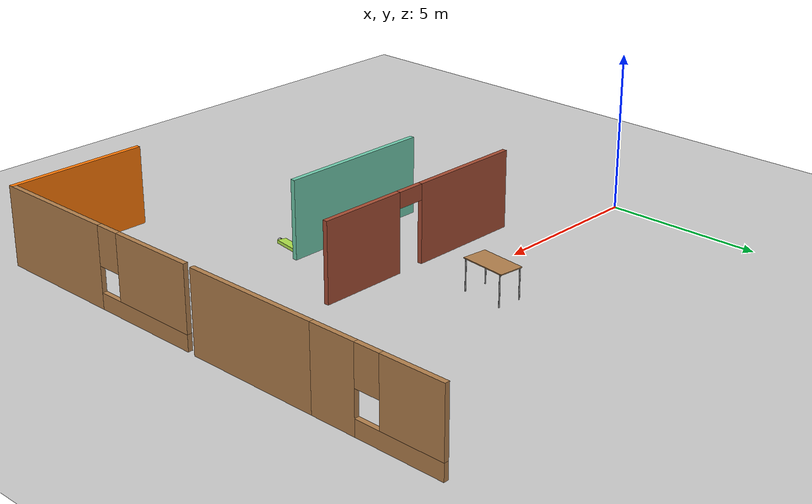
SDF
<sdf version="1.7">
 <world name="default">
  <model name="ground_plane">
   <static>1</static>
   <link name="link">
    <collision name="collision">
     <geometry><plane><normal>0 0 1</normal><size>100 100</size></plane></geometry>
     <surface>
      <contact><collide_bitmask>65535</collide_bitmask></contact>
      <friction><ode><mu>100</mu><mu2>50</mu2></ode></friction>
     </surface>
    </collision>
    <visual name="visual">
     <cast_shadows>0</cast_shadows>
     <geometry><plane><normal>0 0 1</normal><size>100 100</size></plane></geometry>
     <material>
      <script><uri>file://media/materials/scripts/gazebo.material</uri><name>Gazebo/Grey</name></script>
     </material>
    </visual>
   </link>
  </model>
  <model name="table_clone_clone">
   <model name="table">
    <static>1</static>
    <link name="link">
     <collision name="surface">
      <pose>0 0 1 0 -0 0</pose>
      <geometry><box><size>1.5 0.8 0.03</size></box></geometry>
      <surface><friction><ode><mu>0.6</mu><mu2>0.6</mu2></ode></friction></surface>
     </collision>
     <visual name="visual1">
      <pose>0 0 1 0 -0 0</pose>
      <geometry><box><size>1.5 0.8 0.03</size></box></geometry>
      <material>
       <script><uri>file://media/materials/scripts/gazebo.material</uri><name>Gazebo/Wood</name></script>
      </material>
     </visual>
     <collision name="front_left_leg">
      <pose>0.68 0.38 0.5 0 -0 0</pose>
      <geometry><cylinder><radius>0.02</radius><length>1</length></cylinder></geometry>
     </collision>
     <visual name="front_left_leg">
      <pose>0.68 0.38 0.5 0 -0 0</pose>
      <geometry><cylinder><radius>0.02</radius><length>1</length></cylinder></geometry>
      <material>
       <script><uri>file://media/materials/scripts/gazebo.material</uri><name>Gazebo/Grey</name></script>
      </material>
     </visual>
     <collision name="front_right_leg">
      <pose>0.68 -0.38 0.5 0 -0 0</pose>
      <geometry><cylinder><radius>0.02</radius><length>1</length></cylinder></geometry>
     </collision>
     <visual name="front_right_leg">
      <pose>0.68 -0.38 0.5 0 -0 0</pose>
      <geometry><cylinder><radius>0.02</radius><length>1</length></cylinder></geometry>
      <material>
       <script><uri>file://media/materials/scripts/gazebo.material</uri><name>Gazebo/Grey</name></script>
      </material>
     </visual>
     <collision name="back_right_leg">
      <pose>-0.68 -0.38 0.5 0 -0 0</pose>
      <geometry><cylinder><radius>0.02</radius><length>1</length></cylinder></geometry>
     </collision>
     <visual name="back_right_leg">
      <pose>-0.68 -0.38 0.5 0 -0 0</pose>
      <geometry><cylinder><radius>0.02</radius><length>1</length></cylinder></geometry>
      <material>
       <script><uri>file://media/materials/scripts/gazebo.material</uri><name>Gazebo/Grey</name></script>
      </material>
     </visual>
     <collision name="back_left_leg">
      <pose>-0.68 0.38 0.5 0 -0 0</pose>
      <geometry><cylinder><radius>0.02</radius><length>1</length></cylinder></geometry>
     </collision>
     <visual name="back_left_leg">
      <pose>-0.68 0.38 0.5 0 -0 0</pose>
      <geometry><cylinder><radius>0.02</radius><length>1</length></cylinder></geometry>
      <material>
       <script><uri>file://media/materials/scripts/gazebo.material</uri><name>Gazebo/Grey</name></script>
      </material>
     </visual>
    </link>
   </model>
   <static>0</static>
   <pose>7.53193 1.28893 0 0 -0 1.46059</pose>
  </model>
  <model name="floorplan">
   <link name="Wall_10">
    <pose>15.7094 -4.42431 0 0 -0 1.5708</pose>
    <visual name="Wall_10_Visual_0">
     <pose>-1.80178 0 1.25 0 -0 0</pose>
     <geometry><box><size>4.14643 0.15 2.5</size></box></geometry>
     <material>
      <script><uri>file://media/materials/scripts/gazebo.material</uri><name>Gazebo/Wood</name></script>
      <ambient>0.996078 0.47451 0.0196078 1</ambient>
      <shader type="pixel"/>
     </material>
     <meta><layer>0</layer></meta>
    </visual>
    <visual name="Wall_10_Visual_1">
     <pose>2.07322 0 0.25 0 -0 0</pose>
     <geometry><box><size>3.60357 0.15 0.5</size></box></geometry>
     <material>
      <script><uri>file://media/materials/scripts/gazebo.material</uri><name>Gazebo/Wood</name></script>
      <ambient>0.996078 0.47451 0.0196078 1</ambient>
      <shader type="pixel"/>
     </material>
     <meta><layer>0</layer></meta>
    </visual>
    <visual name="Wall_10_Visual_2">
     <pose>2.47322 0 1.5 0 -0 0</pose>
     <geometry><box><size>2.80357 0.15 2</size></box></geometry>
     <material>
      <script><uri>file://media/materials/scripts/gazebo.material</uri><name>Gazebo/Wood</name></script>
      <ambient>0.996078 0.47451 0.0196078 1</ambient>
      <shader type="pixel"/>
     </material>
     <meta><layer>0</layer></meta>
    </visual>
    <visual name="Wall_10_Visual_3">
     <pose>0.671434 0 1.9 0 -0 0</pose>
     <geometry><box><size>0.8 0.15 1.2</size></box></geometry>
     <material>
      <script><uri>file://media/materials/scripts/gazebo.material</uri><name>Gazebo/Wood</name></script>
      <ambient>0.996078 0.47451 0.0196078 1</ambient>
      <shader type="pixel"/>
     </material>
     <meta><layer>0</layer></meta>
    </visual>
    <collision name="Wall_10_Collision_0">
     <pose>-1.80178 0 1.25 0 -0 0</pose>
     <geometry><box><size>4.14643 0.15 2.5</size></box></geometry>
     <surface>
      <friction>
       <ode><mu>1</mu><mu2>1</mu2><fdir1>0 0 0</fdir1><slip1>0</slip1><slip2>0</slip2></ode>
       <torsional>
        <coefficient>1</coefficient>
        <patch_radius>0</patch_radius>
        <surface_radius>0</surface_radius>
        <use_patch_radius>1</use_patch_radius>
        <ode><slip>0</slip></ode>
       </torsional>
      </friction>
      <bounce><restitution_coefficient>0</restitution_coefficient><threshold>1e+06</threshold></bounce>
      <contact>
       <collide_without_contact>0</collide_without_contact>
       <collide_without_contact_bitmask>1</collide_without_contact_bitmask>
       <collide_bitmask>1</collide_bitmask>
       <ode>
        <soft_cfm>0</soft_cfm>
        <soft_erp>0.2</soft_erp>
        <kp>1e+13</kp>
        <kd>1</kd>
        <max_vel>0.01</max_vel>
        <min_depth>0</min_depth>
       </ode>
       <bullet>
        <split_impulse>1</split_impulse>
        <split_impulse_penetration_threshold>-0.01</split_impulse_penetration_threshold>
        <soft_cfm>0</soft_cfm>
        <soft_erp>0.2</soft_erp>
        <kp>1e+13</kp>
        <kd>1</kd>
       </bullet>
      </contact>
     </surface>
    </collision>
    <collision name="Wall_10_Collision_1">
     <pose>2.07322 0 0.25 0 -0 0</pose>
     <geometry><box><size>3.60357 0.15 0.5</size></box></geometry>
     <surface>
      <friction>
       <ode><mu>1</mu><mu2>1</mu2><fdir1>0 0 0</fdir1><slip1>0</slip1><slip2>0</slip2></ode>
       <torsional>
        <coefficient>1</coefficient>
        <patch_radius>0</patch_radius>
        <surface_radius>0</surface_radius>
        <use_patch_radius>1</use_patch_radius>
        <ode><slip>0</slip></ode>
       </torsional>
      </friction>
      <bounce><restitution_coefficient>0</restitution_coefficient><threshold>1e+06</threshold></bounce>
      <contact>
       <collide_without_contact>0</collide_without_contact>
       <collide_without_contact_bitmask>1</collide_without_contact_bitmask>
       <collide_bitmask>1</collide_bitmask>
       <ode>
        <soft_cfm>0</soft_cfm>
        <soft_erp>0.2</soft_erp>
        <kp>1e+13</kp>
        <kd>1</kd>
        <max_vel>0.01</max_vel>
        <min_depth>0</min_depth>
       </ode>
       <bullet>
        <split_impulse>1</split_impulse>
        <split_impulse_penetration_threshold>-0.01</split_impulse_penetration_threshold>
        <soft_cfm>0</soft_cfm>
        <soft_erp>0.2</soft_erp>
        <kp>1e+13</kp>
        <kd>1</kd>
       </bullet>
      </contact>
     </surface>
    </collision>
    <collision name="Wall_10_Collision_2">
     <pose>2.47322 0 1.5 0 -0 0</pose>
     <geometry><box><size>2.80357 0.15 2</size></box></geometry>
     <surface>
      <friction>
       <ode><mu>1</mu><mu2>1</mu2><fdir1>0 0 0</fdir1><slip1>0</slip1><slip2>0</slip2></ode>
       <torsional>
        <coefficient>1</coefficient>
        <patch_radius>0</patch_radius>
        <surface_radius>0</surface_radius>
        <use_patch_radius>1</use_patch_radius>
        <ode><slip>0</slip></ode>
       </torsional>
      </friction>
      <bounce><restitution_coefficient>0</restitution_coefficient><threshold>1e+06</threshold></bounce>
      <contact>
       <collide_without_contact>0</collide_without_contact>
       <collide_without_contact_bitmask>1</collide_without_contact_bitmask>
       <collide_bitmask>1</collide_bitmask>
       <ode>
        <soft_cfm>0</soft_cfm>
        <soft_erp>0.2</soft_erp>
        <kp>1e+13</kp>
        <kd>1</kd>
        <max_vel>0.01</max_vel>
        <min_depth>0</min_depth>
       </ode>
       <bullet>
        <split_impulse>1</split_impulse>
        <split_impulse_penetration_threshold>-0.01</split_impulse_penetration_threshold>
        <soft_cfm>0</soft_cfm>
        <soft_erp>0.2</soft_erp>
        <kp>1e+13</kp>
        <kd>1</kd>
       </bullet>
      </contact>
     </surface>
    </collision>
    <collision name="Wall_10_Collision_3">
     <pose>0.671434 0 1.9 0 -0 0</pose>
     <geometry><box><size>0.8 0.15 1.2</size></box></geometry>
     <surface>
      <friction>
       <ode><mu>1</mu><mu2>1</mu2><fdir1>0 0 0</fdir1><slip1>0</slip1><slip2>0</slip2></ode>
       <torsional>
        <coefficient>1</coefficient>
        <patch_radius>0</patch_radius>
        <surface_radius>0</surface_radius>
        <use_patch_radius>1</use_patch_radius>
        <ode><slip>0</slip></ode>
       </torsional>
      </friction>
      <bounce><restitution_coefficient>0</restitution_coefficient><threshold>1e+06</threshold></bounce>
      <contact>
       <collide_without_contact>0</collide_without_contact>
       <collide_without_contact_bitmask>1</collide_without_contact_bitmask>
       <collide_bitmask>1</collide_bitmask>
       <ode>
        <soft_cfm>0</soft_cfm>
        <soft_erp>0.2</soft_erp>
        <kp>1e+13</kp>
        <kd>1</kd>
        <max_vel>0.01</max_vel>
        <min_depth>0</min_depth>
       </ode>
       <bullet>
        <split_impulse>1</split_impulse>
        <split_impulse_penetration_threshold>-0.01</split_impulse_penetration_threshold>
        <soft_cfm>0</soft_cfm>
        <soft_erp>0.2</soft_erp>
        <kp>1e+13</kp>
        <kd>1</kd>
       </bullet>
      </contact>
     </surface>
    </collision>
   </link>
   <link name="Wall_16">
    <pose>15.725 1.96893 0 0 -0 1.5708</pose>
    <visual name="Wall_16_Visual">
     <pose>0 0 1.25 0 -0 0</pose>
     <geometry><box><size>4.5 0.15 2.5</size></box></geometry>
     <material>
      <script><uri>file://media/materials/scripts/gazebo.material</uri><name>Gazebo/Wood</name></script>
      <ambient>0.996078 0.47451 0.0196078 1</ambient>
      <shader type="pixel"/>
     </material>
     <meta><layer>0</layer></meta>
    </visual>
    <collision name="Wall_16_Collision">
     <pose>0 0 1.25 0 -0 0</pose>
     <geometry><box><size>4.5 0.15 2.5</size></box></geometry>
     <surface>
      <friction>
       <ode><mu>1</mu><mu2>1</mu2><fdir1>0 0 0</fdir1><slip1>0</slip1><slip2>0</slip2></ode>
       <torsional>
        <coefficient>1</coefficient>
        <patch_radius>0</patch_radius>
        <surface_radius>0</surface_radius>
        <use_patch_radius>1</use_patch_radius>
        <ode><slip>0</slip></ode>
       </torsional>
      </friction>
      <bounce><restitution_coefficient>0</restitution_coefficient><threshold>1e+06</threshold></bounce>
      <contact>
       <collide_without_contact>0</collide_without_contact>
       <collide_without_contact_bitmask>1</collide_without_contact_bitmask>
       <collide_bitmask>1</collide_bitmask>
       <ode>
        <soft_cfm>0</soft_cfm>
        <soft_erp>0.2</soft_erp>
        <kp>1e+13</kp>
        <kd>1</kd>
        <max_vel>0.01</max_vel>
        <min_depth>0</min_depth>
       </ode>
       <bullet>
        <split_impulse>1</split_impulse>
        <split_impulse_penetration_threshold>-0.01</split_impulse_penetration_threshold>
        <soft_cfm>0</soft_cfm>
        <soft_erp>0.2</soft_erp>
        <kp>1e+13</kp>
        <kd>1</kd>
       </bullet>
      </contact>
     </surface>
    </collision>
   </link>
   <link name="Wall_20">
    <pose>15.725 6.19393 0 0 -0 1.5708</pose>
    <visual name="Wall_20_Visual_0">
     <pose>-1.39393 0 1.25 0 -0 0</pose>
     <geometry><box><size>1.46215 0.15 2.5</size></box></geometry>
     <material>
      <script><uri>file://media/materials/scripts/gazebo.material</uri><name>Gazebo/Wood</name></script>
      <ambient>1 1 1 1</ambient>
      <shader type="pixel"/>
     </material>
     <meta><layer>0</layer></meta>
    </visual>
    <visual name="Wall_20_Visual_1">
     <pose>0.731073 0 0.25 0 -0 0</pose>
     <geometry><box><size>2.78785 0.15 0.5</size></box></geometry>
     <material>
      <script><uri>file://media/materials/scripts/gazebo.material</uri><name>Gazebo/Wood</name></script>
      <ambient>1 1 1 1</ambient>
      <shader type="pixel"/>
     </material>
     <meta><layer>0</layer></meta>
    </visual>
    <visual name="Wall_20_Visual_2">
     <pose>1.13107 0 1.5 0 -0 0</pose>
     <geometry><box><size>1.98785 0.15 2</size></box></geometry>
     <material>
      <script><uri>file://media/materials/scripts/gazebo.material</uri><name>Gazebo/Wood</name></script>
      <ambient>1 1 1 1</ambient>
      <shader type="pixel"/>
     </material>
     <meta><layer>0</layer></meta>
    </visual>
    <visual name="Wall_20_Visual_3">
     <pose>-0.262854 0 1.9 0 -0 0</pose>
     <geometry><box><size>0.8 0.15 1.2</size></box></geometry>
     <material>
      <script><uri>file://media/materials/scripts/gazebo.material</uri><name>Gazebo/Wood</name></script>
      <ambient>1 1 1 1</ambient>
      <shader type="pixel"/>
     </material>
     <meta><layer>0</layer></meta>
    </visual>
    <collision name="Wall_20_Collision_0">
     <pose>-1.39393 0 1.25 0 -0 0</pose>
     <geometry><box><size>1.46215 0.15 2.5</size></box></geometry>
     <surface>
      <friction>
       <ode><mu>1</mu><mu2>1</mu2><fdir1>0 0 0</fdir1><slip1>0</slip1><slip2>0</slip2></ode>
       <torsional>
        <coefficient>1</coefficient>
        <patch_radius>0</patch_radius>
        <surface_radius>0</surface_radius>
        <use_patch_radius>1</use_patch_radius>
        <ode><slip>0</slip></ode>
       </torsional>
      </friction>
      <bounce><restitution_coefficient>0</restitution_coefficient><threshold>1e+06</threshold></bounce>
      <contact>
       <collide_without_contact>0</collide_without_contact>
       <collide_without_contact_bitmask>1</collide_without_contact_bitmask>
       <collide_bitmask>1</collide_bitmask>
       <ode>
        <soft_cfm>0</soft_cfm>
        <soft_erp>0.2</soft_erp>
        <kp>1e+13</kp>
        <kd>1</kd>
        <max_vel>0.01</max_vel>
        <min_depth>0</min_depth>
       </ode>
       <bullet>
        <split_impulse>1</split_impulse>
        <split_impulse_penetration_threshold>-0.01</split_impulse_penetration_threshold>
        <soft_cfm>0</soft_cfm>
        <soft_erp>0.2</soft_erp>
        <kp>1e+13</kp>
        <kd>1</kd>
       </bullet>
      </contact>
     </surface>
    </collision>
    <collision name="Wall_20_Collision_1">
     <pose>0.731073 0 0.25 0 -0 0</pose>
     <geometry><box><size>2.78785 0.15 0.5</size></box></geometry>
     <surface>
      <friction>
       <ode><mu>1</mu><mu2>1</mu2><fdir1>0 0 0</fdir1><slip1>0</slip1><slip2>0</slip2></ode>
       <torsional>
        <coefficient>1</coefficient>
        <patch_radius>0</patch_radius>
        <surface_radius>0</surface_radius>
        <use_patch_radius>1</use_patch_radius>
        <ode><slip>0</slip></ode>
       </torsional>
      </friction>
      <bounce><restitution_coefficient>0</restitution_coefficient><threshold>1e+06</threshold></bounce>
      <contact>
       <collide_without_contact>0</collide_without_contact>
       <collide_without_contact_bitmask>1</collide_without_contact_bitmask>
       <collide_bitmask>1</collide_bitmask>
       <ode>
        <soft_cfm>0</soft_cfm>
        <soft_erp>0.2</soft_erp>
        <kp>1e+13</kp>
        <kd>1</kd>
        <max_vel>0.01</max_vel>
        <min_depth>0</min_depth>
       </ode>
       <bullet>
        <split_impulse>1</split_impulse>
        <split_impulse_penetration_threshold>-0.01</split_impulse_penetration_threshold>
        <soft_cfm>0</soft_cfm>
        <soft_erp>0.2</soft_erp>
        <kp>1e+13</kp>
        <kd>1</kd>
       </bullet>
      </contact>
     </surface>
    </collision>
    <collision name="Wall_20_Collision_2">
     <pose>1.13107 0 1.5 0 -0 0</pose>
     <geometry><box><size>1.98785 0.15 2</size></box></geometry>
     <surface>
      <friction>
       <ode><mu>1</mu><mu2>1</mu2><fdir1>0 0 0</fdir1><slip1>0</slip1><slip2>0</slip2></ode>
       <torsional>
        <coefficient>1</coefficient>
        <patch_radius>0</patch_radius>
        <surface_radius>0</surface_radius>
        <use_patch_radius>1</use_patch_radius>
        <ode><slip>0</slip></ode>
       </torsional>
      </friction>
      <bounce><restitution_coefficient>0</restitution_coefficient><threshold>1e+06</threshold></bounce>
      <contact>
       <collide_without_contact>0</collide_without_contact>
       <collide_without_contact_bitmask>1</collide_without_contact_bitmask>
       <collide_bitmask>1</collide_bitmask>
       <ode>
        <soft_cfm>0</soft_cfm>
        <soft_erp>0.2</soft_erp>
        <kp>1e+13</kp>
        <kd>1</kd>
        <max_vel>0.01</max_vel>
        <min_depth>0</min_depth>
       </ode>
       <bullet>
        <split_impulse>1</split_impulse>
        <split_impulse_penetration_threshold>-0.01</split_impulse_penetration_threshold>
        <soft_cfm>0</soft_cfm>
        <soft_erp>0.2</soft_erp>
        <kp>1e+13</kp>
        <kd>1</kd>
       </bullet>
      </contact>
     </surface>
    </collision>
    <collision name="Wall_20_Collision_3">
     <pose>-0.262854 0 1.9 0 -0 0</pose>
     <geometry><box><size>0.8 0.15 1.2</size></box></geometry>
     <surface>
      <friction>
       <ode><mu>1</mu><mu2>1</mu2><fdir1>0 0 0</fdir1><slip1>0</slip1><slip2>0</slip2></ode>
       <torsional>
        <coefficient>1</coefficient>
        <patch_radius>0</patch_radius>
        <surface_radius>0</surface_radius>
        <use_patch_radius>1</use_patch_radius>
        <ode><slip>0</slip></ode>
       </torsional>
      </friction>
      <bounce><restitution_coefficient>0</restitution_coefficient><threshold>1e+06</threshold></bounce>
      <contact>
       <collide_without_contact>0</collide_without_contact>
       <collide_without_contact_bitmask>1</collide_without_contact_bitmask>
       <collide_bitmask>1</collide_bitmask>
       <ode>
        <soft_cfm>0</soft_cfm>
        <soft_erp>0.2</soft_erp>
        <kp>1e+13</kp>
        <kd>1</kd>
        <max_vel>0.01</max_vel>
        <min_depth>0</min_depth>
       </ode>
       <bullet>
        <split_impulse>1</split_impulse>
        <split_impulse_penetration_threshold>-0.01</split_impulse_penetration_threshold>
        <soft_cfm>0</soft_cfm>
        <soft_erp>0.2</soft_erp>
        <kp>1e+13</kp>
        <kd>1</kd>
       </bullet>
      </contact>
     </surface>
    </collision>
   </link>
   <link name="Wall_30">
    <pose>7.65692 0.027575 0 0 -0 0</pose>
    <visual name="Wall_30_Visual_0">
     <pose>-1.87765 0 1.25 0 -0 0</pose>
     <geometry><box><size>3.74469 0.15 2.5</size></box></geometry>
     <material>
      <script><uri>file://media/materials/scripts/gazebo.material</uri><name>Gazebo/Bricks</name></script>
      <ambient>1 1 1 1</ambient>
      <shader type="pixel"/>
     </material>
     <meta><layer>0</layer></meta>
    </visual>
    <visual name="Wall_30_Visual_1">
     <pose>2.32235 0 1.25 0 -0 0</pose>
     <geometry><box><size>2.85531 0.15 2.5</size></box></geometry>
     <material>
      <script><uri>file://media/materials/scripts/gazebo.material</uri><name>Gazebo/Bricks</name></script>
      <ambient>1 1 1 1</ambient>
      <shader type="pixel"/>
     </material>
     <meta><layer>0</layer></meta>
    </visual>
    <visual name="Wall_30_Visual_2">
     <pose>0.444693 0 2.25 0 -0 0</pose>
     <geometry><box><size>0.9 0.15 0.5</size></box></geometry>
     <material>
      <script><uri>file://media/materials/scripts/gazebo.material</uri><name>Gazebo/Bricks</name></script>
      <ambient>1 1 1 1</ambient>
      <shader type="pixel"/>
     </material>
     <meta><layer>0</layer></meta>
    </visual>
    <collision name="Wall_30_Collision_0">
     <pose>-1.87765 0 1.25 0 -0 0</pose>
     <geometry><box><size>3.74469 0.15 2.5</size></box></geometry>
     <surface>
      <friction>
       <ode><mu>1</mu><mu2>1</mu2><fdir1>0 0 0</fdir1><slip1>0</slip1><slip2>0</slip2></ode>
       <torsional>
        <coefficient>1</coefficient>
        <patch_radius>0</patch_radius>
        <surface_radius>0</surface_radius>
        <use_patch_radius>1</use_patch_radius>
        <ode><slip>0</slip></ode>
       </torsional>
      </friction>
      <bounce><restitution_coefficient>0</restitution_coefficient><threshold>1e+06</threshold></bounce>
      <contact>
       <collide_without_contact>0</collide_without_contact>
       <collide_without_contact_bitmask>1</collide_without_contact_bitmask>
       <collide_bitmask>1</collide_bitmask>
       <ode>
        <soft_cfm>0</soft_cfm>
        <soft_erp>0.2</soft_erp>
        <kp>1e+13</kp>
        <kd>1</kd>
        <max_vel>0.01</max_vel>
        <min_depth>0</min_depth>
       </ode>
       <bullet>
        <split_impulse>1</split_impulse>
        <split_impulse_penetration_threshold>-0.01</split_impulse_penetration_threshold>
        <soft_cfm>0</soft_cfm>
        <soft_erp>0.2</soft_erp>
        <kp>1e+13</kp>
        <kd>1</kd>
       </bullet>
      </contact>
     </surface>
    </collision>
    <collision name="Wall_30_Collision_1">
     <pose>2.32235 0 1.25 0 -0 0</pose>
     <geometry><box><size>2.85531 0.15 2.5</size></box></geometry>
     <surface>
      <friction>
       <ode><mu>1</mu><mu2>1</mu2><fdir1>0 0 0</fdir1><slip1>0</slip1><slip2>0</slip2></ode>
       <torsional>
        <coefficient>1</coefficient>
        <patch_radius>0</patch_radius>
        <surface_radius>0</surface_radius>
        <use_patch_radius>1</use_patch_radius>
        <ode><slip>0</slip></ode>
       </torsional>
      </friction>
      <bounce><restitution_coefficient>0</restitution_coefficient><threshold>1e+06</threshold></bounce>
      <contact>
       <collide_without_contact>0</collide_without_contact>
       <collide_without_contact_bitmask>1</collide_without_contact_bitmask>
       <collide_bitmask>1</collide_bitmask>
       <ode>
        <soft_cfm>0</soft_cfm>
        <soft_erp>0.2</soft_erp>
        <kp>1e+13</kp>
        <kd>1</kd>
        <max_vel>0.01</max_vel>
        <min_depth>0</min_depth>
       </ode>
       <bullet>
        <split_impulse>1</split_impulse>
        <split_impulse_penetration_threshold>-0.01</split_impulse_penetration_threshold>
        <soft_cfm>0</soft_cfm>
        <soft_erp>0.2</soft_erp>
        <kp>1e+13</kp>
        <kd>1</kd>
       </bullet>
      </contact>
     </surface>
    </collision>
    <collision name="Wall_30_Collision_2">
     <pose>0.444693 0 2.25 0 -0 0</pose>
     <geometry><box><size>0.9 0.15 0.5</size></box></geometry>
     <surface>
      <friction>
       <ode><mu>1</mu><mu2>1</mu2><fdir1>0 0 0</fdir1><slip1>0</slip1><slip2>0</slip2></ode>
       <torsional>
        <coefficient>1</coefficient>
        <patch_radius>0</patch_radius>
        <surface_radius>0</surface_radius>
        <use_patch_radius>1</use_patch_radius>
        <ode><slip>0</slip></ode>
       </torsional>
      </friction>
      <bounce><restitution_coefficient>0</restitution_coefficient><threshold>1e+06</threshold></bounce>
      <contact>
       <collide_without_contact>0</collide_without_contact>
       <collide_without_contact_bitmask>1</collide_without_contact_bitmask>
       <collide_bitmask>1</collide_bitmask>
       <ode>
        <soft_cfm>0</soft_cfm>
        <soft_erp>0.2</soft_erp>
        <kp>1e+13</kp>
        <kd>1</kd>
        <max_vel>0.01</max_vel>
        <min_depth>0</min_depth>
       </ode>
       <bullet>
        <split_impulse>1</split_impulse>
        <split_impulse_penetration_threshold>-0.01</split_impulse_penetration_threshold>
        <soft_cfm>0</soft_cfm>
        <soft_erp>0.2</soft_erp>
        <kp>1e+13</kp>
        <kd>1</kd>
       </bullet>
      </contact>
     </surface>
    </collision>
   </link>
   <link name="Wall_42">
    <pose>7.47697 -2.78983 0 0 -0 0</pose>
    <visual name="Wall_42_Visual">
     <pose>0 0 1.25 0 -0 0</pose>
     <geometry><box><size>5 0.15 2.5</size></box></geometry>
     <material>
      <script><uri>file://media/materials/scripts/gazebo.material</uri><name>Gazebo/Grey</name></script>
      <ambient>0.435294 0.796078 0.67451 1</ambient>
      <shader type="pixel"/>
     </material>
     <meta><layer>0</layer></meta>
    </visual>
    <collision name="Wall_42_Collision">
     <pose>0 0 1.25 0 -0 0</pose>
     <geometry><box><size>5 0.15 2.5</size></box></geometry>
     <surface>
      <friction>
       <ode><mu>1</mu><mu2>1</mu2><fdir1>0 0 0</fdir1><slip1>0</slip1><slip2>0</slip2></ode>
       <torsional>
        <coefficient>1</coefficient>
        <patch_radius>0</patch_radius>
        <surface_radius>0</surface_radius>
        <use_patch_radius>1</use_patch_radius>
        <ode><slip>0</slip></ode>
       </torsional>
      </friction>
      <bounce><restitution_coefficient>0</restitution_coefficient><threshold>1e+06</threshold></bounce>
      <contact>
       <collide_without_contact>0</collide_without_contact>
       <collide_without_contact_bitmask>1</collide_without_contact_bitmask>
       <collide_bitmask>1</collide_bitmask>
       <ode>
        <soft_cfm>0</soft_cfm>
        <soft_erp>0.2</soft_erp>
        <kp>1e+13</kp>
        <kd>1</kd>
        <max_vel>0.01</max_vel>
        <min_depth>0</min_depth>
       </ode>
       <bullet>
        <split_impulse>1</split_impulse>
        <split_impulse_penetration_threshold>-0.01</split_impulse_penetration_threshold>
        <soft_cfm>0</soft_cfm>
        <soft_erp>0.2</soft_erp>
        <kp>1e+13</kp>
        <kd>1</kd>
       </bullet>
      </contact>
     </surface>
    </collision>
   </link>
   <link name="Wall_9">
    <pose>13.5344 -8.22431 0 0 -0 0</pose>
    <visual name="Wall_9_Visual">
     <pose>0 0 1.25 0 -0 0</pose>
     <geometry><box><size>4.5 0.15 2.5</size></box></geometry>
     <material>
      <script><uri>file://media/materials/scripts/gazebo.material</uri><name>Gazebo/Grey</name></script>
      <ambient>0.996078 0.47451 0.0196078 1</ambient>
      <shader type="pixel"/>
     </material>
     <meta><layer>0</layer></meta>
    </visual>
    <collision name="Wall_9_Collision">
     <pose>0 0 1.25 0 -0 0</pose>
     <geometry><box><size>4.5 0.15 2.5</size></box></geometry>
     <surface>
      <friction>
       <ode><mu>1</mu><mu2>1</mu2><fdir1>0 0 0</fdir1><slip1>0</slip1><slip2>0</slip2></ode>
       <torsional>
        <coefficient>1</coefficient>
        <patch_radius>0</patch_radius>
        <surface_radius>0</surface_radius>
        <use_patch_radius>1</use_patch_radius>
        <ode><slip>0</slip></ode>
       </torsional>
      </friction>
      <bounce><restitution_coefficient>0</restitution_coefficient><threshold>1e+06</threshold></bounce>
      <contact>
       <collide_without_contact>0</collide_without_contact>
       <collide_without_contact_bitmask>1</collide_without_contact_bitmask>
       <collide_bitmask>1</collide_bitmask>
       <ode>
        <soft_cfm>0</soft_cfm>
        <soft_erp>0.2</soft_erp>
        <kp>1e+13</kp>
        <kd>1</kd>
        <max_vel>0.01</max_vel>
        <min_depth>0</min_depth>
       </ode>
       <bullet>
        <split_impulse>1</split_impulse>
        <split_impulse_penetration_threshold>-0.01</split_impulse_penetration_threshold>
        <soft_cfm>0</soft_cfm>
        <soft_erp>0.2</soft_erp>
        <kp>1e+13</kp>
        <kd>1</kd>
       </bullet>
      </contact>
     </surface>
    </collision>
   </link>
   <static>1</static>
   <pose>-0.30602 -1.65373 0 0 -0 0</pose>
  </model>
  <model name="robo">
   <link name="link_0">
    <inertial>
     <mass>1</mass>
     <inertia>
      <ixx>0.166667</ixx>
      <ixy>0</ixy>
      <ixz>0</ixz>
      <iyy>0.166667</iyy>
      <iyz>0</iyz>
      <izz>0.166667</izz>
     </inertia>
    </inertial>
    <pose>-0.032766 -0.028472 -0.116438 0 0.196032 0</pose>
    <visual name="visual">
     <pose>0 0 0.2 0 -0 0</pose>
     <geometry><box><size>0.3 1 0.1</size></box></geometry>
     <material>
      <lighting>1</lighting>
      <script><uri>file://media/materials/scripts/gazebo.material</uri><name>Gazebo/Grey</name></script>
      <shader type="pixel"><normal_map>__default__</normal_map></shader>
      <ambient>0.7 0.9 0.3 1</ambient>
      <diffuse>0.7 0.7 0.7 1</diffuse>
      <specular>0.01 0.01 0.01 1</specular>
      <emissive>0 0 0 1</emissive>
     </material>
    </visual>
    <collision name="collision">
     <pose>0 0 0.2 0 -0 0</pose>
     <geometry><box><size>0.3 1 0.1</size></box></geometry>
     <surface>
      <friction>
       <ode><mu>1</mu><mu2>1</mu2><fdir1>0 0 0</fdir1><slip1>0</slip1><slip2>0</slip2></ode>
       <torsional>
        <coefficient>1</coefficient>
        <patch_radius>0</patch_radius>
        <surface_radius>0</surface_radius>
        <use_patch_radius>1</use_patch_radius>
        <ode><slip>0</slip></ode>
       </torsional>
      </friction>
      <bounce><restitution_coefficient>0</restitution_coefficient><threshold>1e+06</threshold></bounce>
      <contact>
       <collide_without_contact>0</collide_without_contact>
       <collide_without_contact_bitmask>1</collide_without_contact_bitmask>
       <collide_bitmask>1</collide_bitmask>
       <ode>
        <soft_cfm>0</soft_cfm>
        <soft_erp>0.2</soft_erp>
        <kp>1e+13</kp>
        <kd>1</kd>
        <max_vel>0.01</max_vel>
        <min_depth>0</min_depth>
       </ode>
       <bullet>
        <split_impulse>1</split_impulse>
        <split_impulse_penetration_threshold>-0.01</split_impulse_penetration_threshold>
        <soft_cfm>0</soft_cfm>
        <soft_erp>0.2</soft_erp>
        <kp>1e+13</kp>
        <kd>1</kd>
       </bullet>
      </contact>
     </surface>
    </collision>
   </link>
   <link name="link_1">
    <inertial>
     <mass>0.00175003</mass>
     <inertia>
      <ixx>3.42e-06</ixx>
      <ixy>0</ixy>
      <ixz>0</ixz>
      <iyy>3.42e-06</iyy>
      <iyz>0</iyz>
      <izz>3.67e-06</izz>
     </inertia>
    </inertial>
    <pose>-0.019732 -0.563709 0.054101 -1.63482 0.167007 -0.010657</pose>
    <visual name="visual">
     <geometry><cylinder><radius>0.0647355</radius><length>0.104356</length></cylinder></geometry>
     <material>
      <lighting>1</lighting>
      <script><uri>file://media/materials/scripts/gazebo.material</uri><name>Gazebo/Grey</name></script>
      <shader type="pixel"><normal_map>__default__</normal_map></shader>
      <emissive>0 0 0 1</emissive>
      <ambient>0.3 0.3 0.3 1</ambient>
      <diffuse>0.7 0.7 0.7 1</diffuse>
      <specular>0.01 0.01 0.01 1</specular>
     </material>
    </visual>
    <collision name="collision">
     <geometry><cylinder><radius>0.064735</radius><length>0.104356</length></cylinder></geometry>
     <surface>
      <friction>
       <ode><mu>1</mu><mu2>1</mu2><fdir1>0 0 0</fdir1><slip1>0</slip1><slip2>0</slip2></ode>
       <torsional>
        <coefficient>1</coefficient>
        <patch_radius>0</patch_radius>
        <surface_radius>0</surface_radius>
        <use_patch_radius>1</use_patch_radius>
        <ode><slip>0</slip></ode>
       </torsional>
      </friction>
      <bounce><restitution_coefficient>0</restitution_coefficient><threshold>1e+06</threshold></bounce>
      <contact>
       <collide_without_contact>0</collide_without_contact>
       <collide_without_contact_bitmask>1</collide_without_contact_bitmask>
       <collide_bitmask>1</collide_bitmask>
       <ode>
        <soft_cfm>0</soft_cfm>
        <soft_erp>0.2</soft_erp>
        <kp>1e+13</kp>
        <kd>1</kd>
        <max_vel>0.01</max_vel>
        <min_depth>0</min_depth>
       </ode>
       <bullet>
        <split_impulse>1</split_impulse>
        <split_impulse_penetration_threshold>-0.01</split_impulse_penetration_threshold>
        <soft_cfm>0</soft_cfm>
        <soft_erp>0.2</soft_erp>
        <kp>1e+13</kp>
        <kd>1</kd>
       </bullet>
      </contact>
     </surface>
    </collision>
   </link>
   <link name="link_1_clone">
    <inertial>
     <mass>0.00175003</mass>
     <inertia>
      <ixx>3.42164e-06</ixx>
      <ixy>0</ixy>
      <ixz>0</ixz>
      <iyy>3.42164e-06</iyy>
      <iyz>0</iyz>
      <izz>3.66691e-06</izz>
     </inertia>
    </inertial>
    <pose>0.007144 0.539571 0.065663 -1.63393 -0 0</pose>
    <visual name="visual">
     <geometry><cylinder><radius>0.0647355</radius><length>0.104356</length></cylinder></geometry>
     <material>
      <lighting>1</lighting>
      <script><uri>file://media/materials/scripts/gazebo.material</uri><name>Gazebo/Grey</name></script>
      <shader type="pixel"/>
      <emissive>0 0 0 1</emissive>
     </material>
    </visual>
    <collision name="collision">
     <geometry><cylinder><radius>0.064736</radius><length>0.104356</length></cylinder></geometry>
     <surface>
      <friction>
       <ode><mu>1</mu><mu2>1</mu2><fdir1>0 0 0</fdir1><slip1>0</slip1><slip2>0</slip2></ode>
       <torsional>
        <coefficient>1</coefficient>
        <patch_radius>0</patch_radius>
        <surface_radius>0</surface_radius>
        <use_patch_radius>1</use_patch_radius>
        <ode><slip>0</slip></ode>
       </torsional>
      </friction>
      <bounce><restitution_coefficient>0</restitution_coefficient><threshold>1e+06</threshold></bounce>
      <contact>
       <collide_without_contact>0</collide_without_contact>
       <collide_without_contact_bitmask>1</collide_without_contact_bitmask>
       <collide_bitmask>1</collide_bitmask>
       <ode>
        <soft_cfm>0</soft_cfm>
        <soft_erp>0.2</soft_erp>
        <kp>1e+13</kp>
        <kd>1</kd>
        <max_vel>0.01</max_vel>
        <min_depth>0</min_depth>
       </ode>
       <bullet>
        <split_impulse>1</split_impulse>
        <split_impulse_penetration_threshold>-0.01</split_impulse_penetration_threshold>
        <soft_cfm>0</soft_cfm>
        <soft_erp>0.2</soft_erp>
        <kp>1e+13</kp>
        <kd>1</kd>
       </bullet>
      </contact>
     </surface>
    </collision>
   </link>
   <joint name="link_0_JOINT_0" type="revolute">
    <parent>link_0</parent>
    <child>link_1</child>
    <axis>
     <xyz>0 0 1</xyz>
     <limit>
      <lower>-1.79769e+308</lower>
      <upper>1.79769e+308</upper>
      <effort>-1</effort>
      <velocity>-1</velocity>
     </limit>
     <dynamics>
      <spring_reference>0</spring_reference>
      <spring_stiffness>0</spring_stiffness>
      <damping>0</damping>
      <friction>0</friction>
     </dynamics>
    </axis>
    <physics>
     <ode><limit><cfm>0</cfm><erp>0.2</erp></limit><suspension><cfm>0</cfm><erp>0.2</erp></suspension></ode>
    </physics>
   </joint>
   <joint name="link_0_JOINT_1" type="revolute">
    <parent>link_0</parent>
    <child>link_1_clone</child>
    <axis>
     <xyz>0 0 1</xyz>
     <limit>
      <lower>-1.79769e+308</lower>
      <upper>1.79769e+308</upper>
      <effort>-1</effort>
      <velocity>-1</velocity>
     </limit>
     <dynamics>
      <spring_reference>0</spring_reference>
      <spring_stiffness>0</spring_stiffness>
      <damping>0</damping>
      <friction>0</friction>
     </dynamics>
    </axis>
    <physics>
     <ode><limit><cfm>0</cfm><erp>0.2</erp></limit><suspension><cfm>0</cfm><erp>0.2</erp></suspension></ode>
    </physics>
   </joint>
   <static>0</static>
   <pose>9.20485 -5.13249 0.009342 -0.013554 -0.131458 2.97277</pose>
  </model>
 </world>
</sdf>
